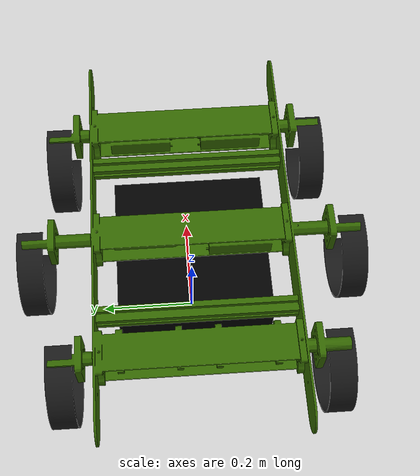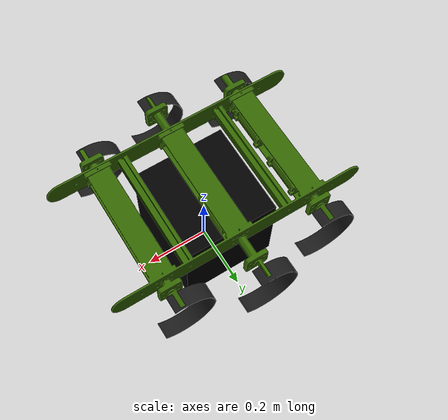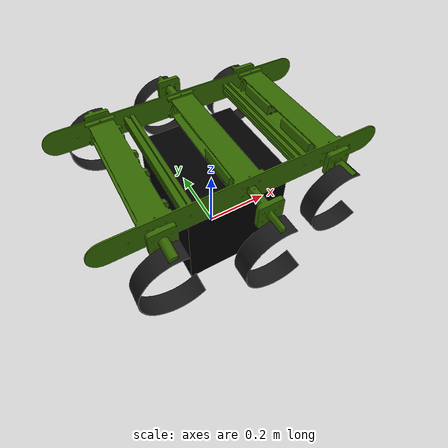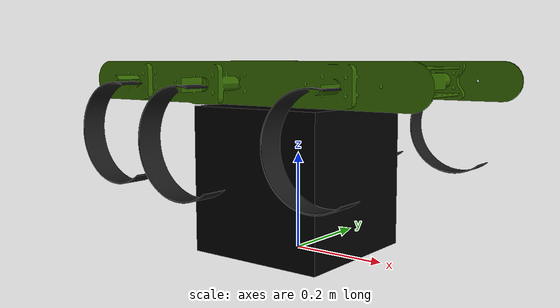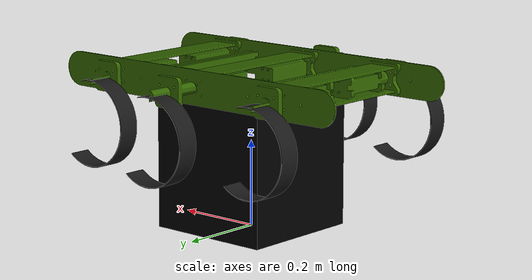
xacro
<?xml version="1.0" ?>
<robot name="hexapodo" xmlns:xacro="http://ros.org/wiki/xacro">

<!--        Definicion del robot hexapodo                                -->

<!-- Archivos para incluir en el robot -->

<xacro:include filename="$(find hexapodo_description)/urdf/pata_c_locked.xacro"/>
<xacro:include filename="$(find hexapodo_description)/urdf/base_locked.xacro"/>
<!--xacro:include filename="$(find hexapodo_description)/urdf/sensores/kinect_camera.xacro"/-->
<!--xacro:include filename="$(find hexapodo_description)/urdf/sensores/imu.xacro"/-->
<!--xacro:include filename="$(find hexapodo_description)/urdf/sensores/hokuyo_sensor.xacro"/-->

<!-- Declaracion del plugin gazebo_ros_control -->

<gazebo>
    <plugin name="gazebo_ros_control" filename="libgazebo_ros_control.so">
        <robotNamespace>/hexapodo</robotNamespace>
    </plugin>
</gazebo>

<!-- Instanciacion de las patas dentro de la descripcion del robot -->

<pata_c name="pata_1" parent_link="base_link" right="0">
    <origin xyz="${-235/1000} ${233/1000} ${0/1000}" rpy="0 0 0"/>
</pata_c>

<pata_c name="pata_2" parent_link="base_link" right="1">
    <origin xyz="${-235/1000} ${-233/1000} ${0/1000}" rpy="0 0 0"/>
</pata_c>

<pata_c name="pata_3" parent_link="base_link" right="0">
    <origin xyz="${0/1000} ${289/1000} ${0/1000}" rpy="0 0 0"/>
</pata_c>

<pata_c name="pata_4" parent_link="base_link" right="1">
    <origin xyz="${0/1000} ${-289/1000} ${0/1000}" rpy="0 0 0"/>
</pata_c>

<pata_c name="pata_5" parent_link="base_link" right="0">
    <origin xyz="${235/1000} ${233/1000} ${0/1000}" rpy="0 0 0"/>
</pata_c>

<pata_c name="pata_6" parent_link="base_link" right="1">
    <origin xyz="${235/1000} ${-233/1000} ${0/1000}" rpy="0 0 0"/>
</pata_c>

<!-- Instanciacion de la camara kinect dentro de la descripcion del robot -->

<!-- Instanciacion de la IMU dentro de la descripcion del robot -->

</robot>

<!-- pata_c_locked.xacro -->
<robot name="pata_c" xmlns:xacro="http://ros.org/wiki/xacro">

<xacro:property name="motor_reduction"  value="${529.0/16}"/>
<xacro:property name="motor_max_effort" value="${3.75}"/>
<xacro:property name="motor_max_rev"    value="${1256.637/motor_reduction}"/>

<xacro:macro name="pata_c" params="name parent_link right *origin">

    <!--        Definicion de las patas en C del robot hexapodo              -->

    <!--Definicion del link de la pata-->

    <link name="${name}_link">

        <!-- El origen de la pata varia en funcion de si se trata de una pata de la zona izquierda -->
        <!-- o de la zona derecha que se pasa como parametro -->

        <inertial>
            <origin xyz="${-42.439/1000} ${25/1000} ${-108.743/1000}" rpy="0 0 0"/>
            <mass value="0.057"/>
            <inertia ixx="${1038.176/(1e6)}"
                     ixy="${-218.169/(1e6)}"     iyy="${273.753/(1e6)}"
                     ixz="${59.956/(1e6)}"       iyz="${153.627/(1e6)}"      izz="${1217.746/(1e6)}"/>
        </inertial>

        <visual>
            <xacro:if value="${right == 1}">
                <origin xyz="0 0 0" rpy="${pi/2} 0 0"/>
            </xacro:if>
            <xacro:if value="${right == 0}">
                <origin xyz="0 0.05 0" rpy="${pi/2} 0 0"/>
            </xacro:if>
            <geometry>
                <mesh filename="package://hexapodo_description/meshes/pvc.stl" scale="0.001 0.001 0.001"/>
            </geometry>
            <material name="Grey">
                <color rgba="0.1 0.1 0.1 1"/>
            </material>
        </visual>

        <collision>
            <xacro:if value="${right == 1}">
                <origin xyz="0 0 0" rpy="${pi/2} 0 0"/>
            </xacro:if>
            <xacro:if value="${right == 0}">
                <origin xyz="0 0.05 0" rpy="${pi/2} 0 0"/>
            </xacro:if>
            <geometry>
                <mesh filename="package://hexapodo_description/meshes/pvc.stl" scale="0.001 0.001 0.001"/>
            </geometry>
        </collision>

    </link>

    <!--Definicion de la joint con el link padre-->

    <joint name="${name}_to_${parent_link}_joint" type="continuous">
        <xacro:insert_block name="origin"/>
        <parent link="${parent_link}"/>
        <child link="${name}_link"/>
        <axis xyz="0 1 0"/>
        <limit effort="${motor_max_effort}" velocity="${motor_max_rev}"/> <!-- Nm rads/s -->
    </joint>

    <!--Definicion de la transmision de la pata-->

    <transmission name="${name}_transmission">
        <type>transmission_interface/SimpleTransmission</type>
        <joint name="${name}_to_${parent_link}_joint">
            <hardwareInterface>hardware_interface/EffortJointInterface</hardwareInterface>
        </joint>
        <actuator name="${name}_actuator">
            <mechanicalReduction>${motor_reduction}</mechanicalReduction>
            <hardwareInterface>EffortJointInterface</hardwareInterface>
        </actuator>
    </transmission>

    <!--Definicion de las propiedades de gazebo-->

    <gazebo reference="${name}_link">
        <mu1>1</mu1>
        <mu2>1</mu2>
        <material>Gazebo/Grey</material>
    </gazebo>

</xacro:macro>

</robot>

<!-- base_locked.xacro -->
<robot name="base" xmlns:xacro="http://ros.org/wiki/xacro">

<xacro:property name="w_radius" value="${108.743/1e3}"/>

<link name="base_footprint">
    <visual>
        <origin xyz="0 0 0.1500" rpy="0 0 0"/>
        <geometry>
            <box size="0.3000 0.3000 0.3000"/>
        </geometry>
        <material name="transparente">
            <color rgba="0 0 0 1"/>
        </material>
    </visual>
    <collision>
        <origin xyz="0 0 0.1500" rpy="0 0 0"/>
        <geometry>
            <box size = "0.3 0.3 0.3" />
        </geometry>
    </collision>
    <inertial>
        <origin xyz="0 0 .15" rpy="0 0 0"/>
         <mass value="1000.0001"/>
         <inertia   ixx="100.0001"    ixy="0"         ixz="0"
                                    iyy="100.0001"    iyz="0"
                                                    izz="100.0001" />
    </inertial>
</link>

<joint name="footprint_base_joint" type="fixed">
    <parent link="base_footprint"/>
    <child link="base_link"/>
    <origin xyz="0 0 ${0.3 + 0.1/2}" rpy="0 0 0"/>
</joint>

<link name="base_link">

    <inertial>
        <origin xyz="${0/1e3} 0 ${1.417/1000}" rpy="${pi/2} 0 ${pi/2}"/>
        <mass value="5.771"/>
        <inertia ixx="${207161.695/(1e6)}"
                 ixy="${0}"                 iyy="${117325.409/(1e6)}"
                 ixz="${0}"                 iyz="${0}"                  izz="${320415.187/(1e6)}"/>
    </inertial>
    <visual>
        <origin xyz="0 0 0" rpy="${pi/2} 0 0"/>
        <geometry>
            <mesh filename="package://hexapodo_description/meshes/chassis_piezas.stl" scale="0.01 0.01 0.01"/>
        </geometry>
        <material name="base_link_material">
            <color rgba="${51/255} ${102/255} ${0/255} 1"/>
        </material>
    </visual>
    <collision>
        <origin xyz="0 0 0" rpy="${pi/2} 0 0"/>
        <geometry>
            <mesh filename="package://hexapodo_description/meshes/chassis_piezas.stl" scale="0.01 0.01 0.01"/>
        </geometry>
    </collision>

</link>

<gazebo reference="base_link">
    <material>Gazebo/Green</material>
</gazebo>

</robot>
